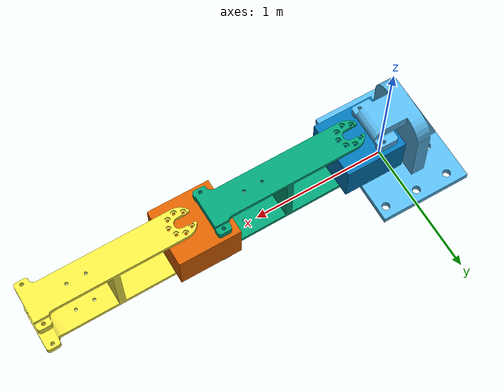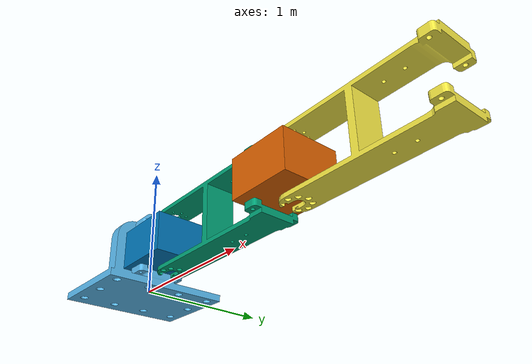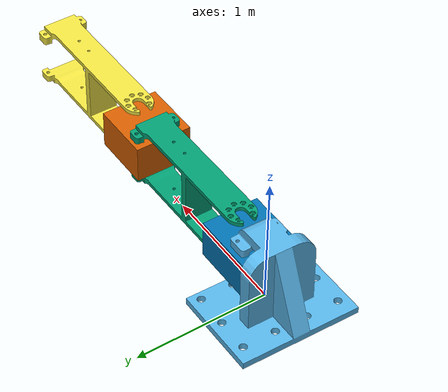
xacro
<?xml version="1.0"?>

<robot xmlns:xacro="http://www.ros.org/wiki/xacro" name="hand_tutorial">

 <xacro:macro name="default_inertial" params="mass">
    <inertial>
      <mass value="${mass}" />
      <inertia ixx="1.0" ixy="0.0" ixz="0.0" iyy="1.0" iyz="0.0" izz="1.0" />
    </inertial>
</xacro:macro>
<link name="world"/>

<link name="base_link">
	<visual name="link_visual">
	<geometry>
	<mesh filename="package://robot_description/meshes/ggwp.stl" />
	</geometry>
	<origin xyz="0 0 -0.05" rpy="0 0 0"/>
	</visual>
	<collision name="link_collision">
	<geometry>
	<mesh filename ="package://robot_description/meshes/ggwp.stl" />
	</geometry>
	</collision>
	<xacro:default_inertial mass="10"/>
</link>

<link name="m2m">
	<visual name="m2m_visual">
	<geometry>
	<mesh filename="package://robot_description/meshes/m2mn.stl"/>
	</geometry>
	<origin rpy ="0 0 3.14" xyz="0 0 0"/>
	</visual>
	<collision name="m2m_collision">
	<geometry>
	<mesh filename="package://robot_description/meshes/m2mn.stl"/>
	</geometry>
	<origin rpy ="0 0 0" xyz="0 0 0"/>
	</collision>
	<xacro:default_inertial mass="10"/>
</link>

<link name="m2m01">
	<visual name="m2m_visual01">
	<geometry>
	<mesh filename="package://robot_description/meshes/m2mn.stl"/>
	</geometry>
	<origin rpy ="0 0 3.14" xyz="0 0 0"/>
	</visual>
	<collision name="m2m_collision01">
	<geometry>
	<mesh filename="package://robot_description/meshes/m2mn.stl"/>
	</geometry>
	<origin rpy ="0 0 0" xyz="0 0 0"/>
	</collision>
	<xacro:default_inertial mass="10"/>
</link>

<link name="motor">
	<visual>
	<geometry>
	<box size="0.454 0.43 0.29"/>
	</geometry>
	<origin rpy="0 0 0" xyz="0 0 0"/>
	</visual>
	<collision>
	<geometry>
	<box size="0.454 0.33 0.29"/>
	</geometry>
	<origin rpy="0 0 0" xyz="0 0 0"/>
	</collision>
	<xacro:default_inertial mass="10"/>
</link>

<link name="motor01">
	<visual>
	<geometry>
	<box size="0.454 0.43 0.29"/>
	</geometry>
	<origin rpy="0 0 0" xyz="0 0 0"/>
	</visual>
	<collision>
	<geometry>
	<box size="0.454 0.43 0.4"/>
	</geometry>
	<origin rpy="0 0 0" xyz="0 0 0"/>
	</collision>
	<xacro:default_inertial mass="10"/>
</link>

<joint name="basetoworld" type="fixed">
	<parent link="world"/>
	<child link="base_link"/>
</joint>

<joint name="basetomotor" type="fixed">

	<parent link="base_link"/>
	<child link="motor"/>
	<origin xyz ="0.2 0 0.285"/>
	<axis xyz = "0 0 1"/>

</joint>

<joint name="motortom2m" type="revolute">
	<parent link="motor"/>
	<child link="m2m"/>
	<origin xyz ="0.1 0 -0.24"/>
	<axis xyz = "0 0 1"/>
	<limit effort="1000.0" lower="-1.0467" upper="1.0467" velocity="0.5"/>
</joint>

<joint name="joint1" type="fixed">
	<parent link ="m2m"/>
	<child link ="motor01"/>

	<origin xyz = "1.17 0 0.258"/>
	<limit effort="0" lower = "0.0" upper="0.0" velocity="0.0"/>
</joint>

<joint name="joint2" type="revolute">
	<parent link="motor01"/>
	<child link="m2m01"/>
	<origin xyz ="0.1 0 -0.24"/>
	<axis xyz = "0 0 1"/>
	<limit effort="1000.0" lower="-1.0467" upper="1.0467" velocity="0.5"/>
</joint>

<transmission name="tran1">
    <type>transmission_interface/SimpleTransmission</type>
    <joint name="motortom2m">
      <hardwareInterface>hardware_interface/EffortJointInterface</hardwareInterface>
    </joint>
    <actuator name="motor1">
      <hardwareInterface>hardware_interface/EffortJointInterface</hardwareInterface>
      <mechanicalReduction>1</mechanicalReduction>
    </actuator>
  </transmission>

 <!-- ros_control plugin -->
  <gazebo>
    <plugin name="gazebo_ros_control" filename="libgazebo_ros_control.so">
      <robotNamespace>/robot</robotNamespace>

    </plugin>
  </gazebo>
</robot>
